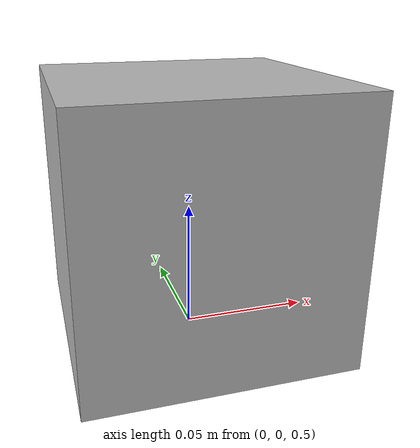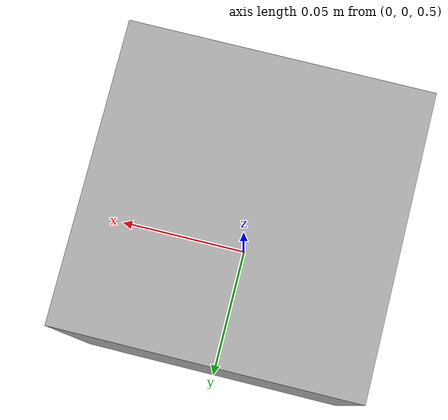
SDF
<?xml version="1.0"?>
<!-- Example SDF for Gazebo Harmonic with GStreamer Camera Plugin -->
<sdf version="1.9">
  <world name="camera_test">
    <physics name="1ms" type="ignored">
      <max_step_size>0.001</max_step_size>
      <real_time_factor>1.0</real_time_factor>
    </physics>

    <plugin filename="gz-sim-physics-system"
            name="gz::sim::systems::Physics">
    </plugin>
    <plugin filename="gz-sim-sensors-system"
            name="gz::sim::systems::Sensors">
      <render_engine>ogre2</render_engine>
    </plugin>
    <plugin filename="gz-sim-scene-broadcaster-system"
            name="gz::sim::systems::SceneBroadcaster">
    </plugin>

    <light type="directional" name="sun">
      <cast_shadows>true</cast_shadows>
      <pose>0 0 10 0 0 0</pose>
      <diffuse>0.8 0.8 0.8 1</diffuse>
      <specular>0.2 0.2 0.2 1</specular>
      <attenuation>
        <range>1000</range>
        <constant>0.9</constant>
        <linear>0.01</linear>
        <quadratic>0.001</quadratic>
      </attenuation>
      <direction>-0.5 0.1 -0.9</direction>
    </light>

    <model name="ground_plane">
      <static>true</static>
      <link name="link">
        <collision name="collision">
          <geometry>
            <plane>
              <normal>0 0 1</normal>
            </plane>
          </geometry>
        </collision>
        <visual name="visual">
          <geometry>
            <plane>
              <normal>0 0 1</normal>
              <size>100 100</size>
            </plane>
          </geometry>
          <material>
            <ambient>0.8 0.8 0.8 1</ambient>
            <diffuse>0.8 0.8 0.8 1</diffuse>
            <specular>0.8 0.8 0.8 1</specular>
          </material>
        </visual>
      </link>
    </model>

    <model name="camera_with_gstreamer">
      <pose>0 0 0.5 0 0 0</pose>
      <static>true</static>

      <link name="link">
        <pose>0 0 0.05 0 0 0</pose>

        <visual name="visual">
          <geometry>
            <box>
              <size>0.1 0.1 0.1</size>
            </box>
          </geometry>
        </visual>

        <!-- Camera sensor with GStreamer plugin -->
        <sensor name="camera" type="camera">
          <camera>
            <horizontal_fov>1.047</horizontal_fov>
            <image>
              <width>1280</width>
              <height>720</height>
            </image>
            <clip>
              <near>0.1</near>
              <far>100</far>
            </clip>
          </camera>
          <always_on>1</always_on>
          <update_rate>30</update_rate>
          <visualize>true</visualize>
          <topic>camera</topic>

          <!-- GStreamer Plugin -->
          <plugin filename="GstCameraPlugin" name="gazebo_gstreamer::GstCameraPlugin">
            <udp_host>default via 172.18.16.1 dev eth0 proto kernel</udp_host>
            <udp_port>5600</udp_port>
          </plugin>
        </sensor>
      </link>
    </model>

  </world>
</sdf>
